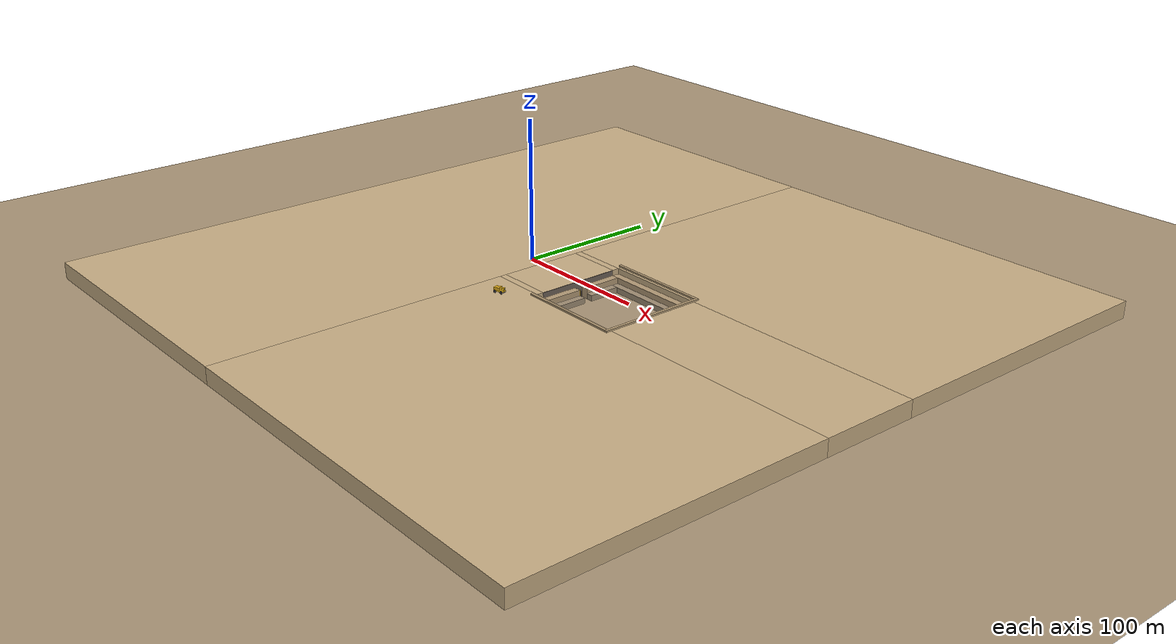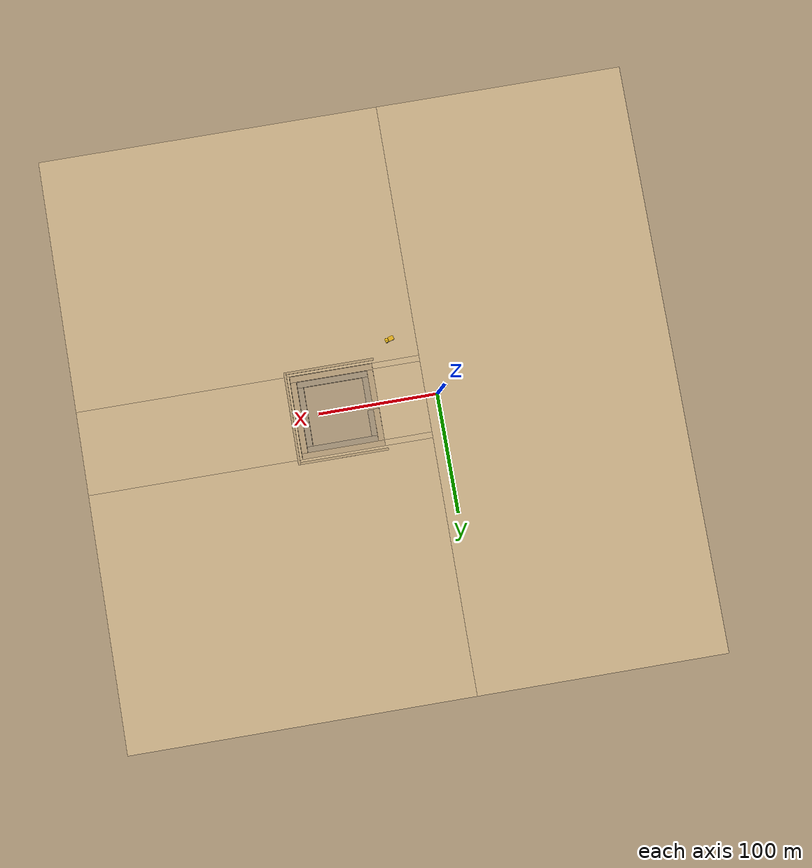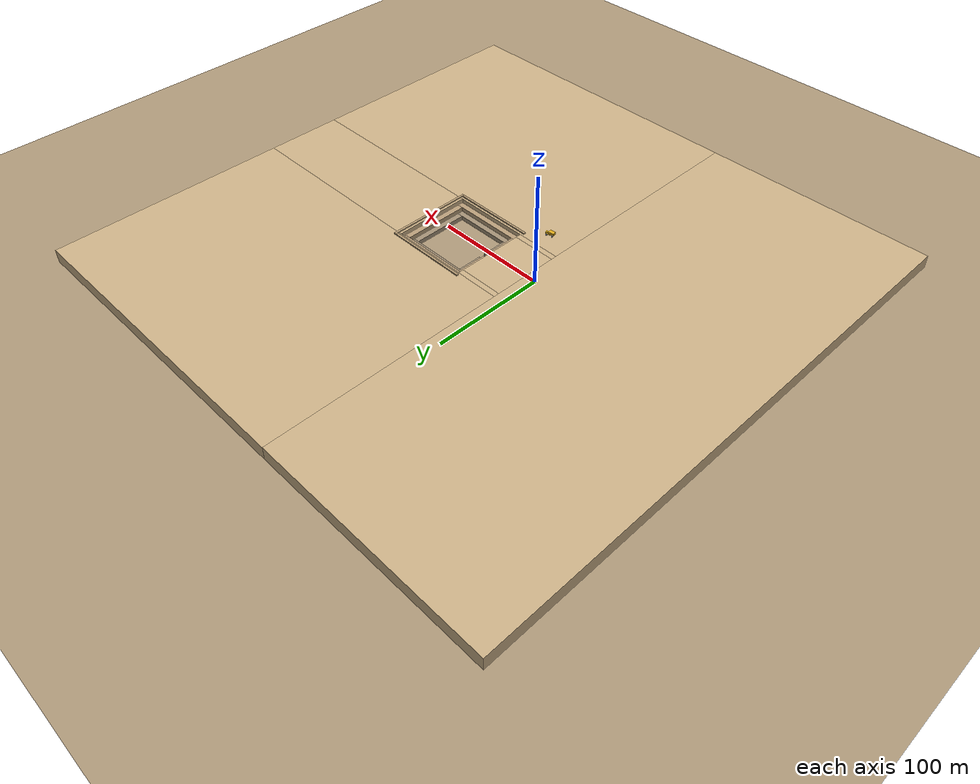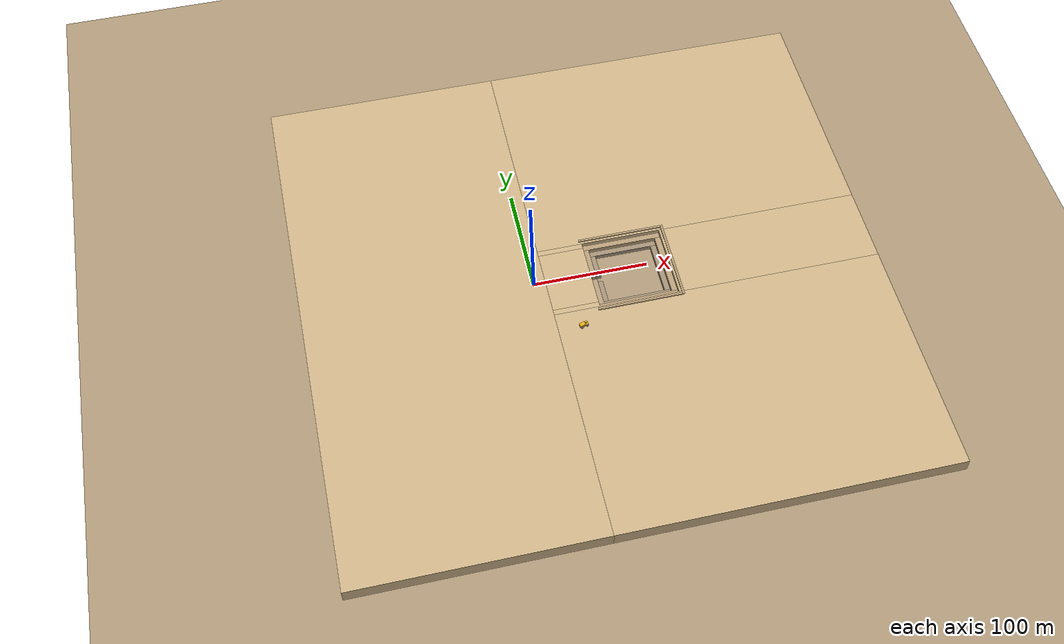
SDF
<sdf version="1.9">
 <world name="phoenix_mine">
  <model name="ground_plane">
   <static>true</static>
   <pose>0 0 -12 0 0 0</pose>
   <link name="link">
    <collision name="collision">
     <geometry><plane><normal>0 0 1</normal><size>1 1</size></plane></geometry>
    </collision>
    <visual name="visual">
     <geometry><plane><normal>0 0 1</normal><size>1500 1500</size></plane></geometry>
     <material>
      <ambient>0.66 0.58 0.46 1</ambient>
      <diffuse>0.66 0.58 0.46 1</diffuse>
      <specular>0.05 0.05 0.05 1</specular>
     </material>
    </visual>
   </link>
  </model>
  <model name="terrain_plateau">
   <static>true</static>
   <link name="link">
    <visual name="v_box_1">
     <pose>-95 0 -6 0 0 0</pose>
     <geometry><box><size>210 500 12</size></box></geometry>
     <material>
      <ambient>0.780 0.680 0.520 1</ambient>
      <diffuse>0.780 0.680 0.520 1</diffuse>
      <specular>0.08 0.08 0.08 1</specular>
     </material>
    </visual>
    <collision name="c_box_1">
     <pose>-95 0 -6 0 0 0</pose>
     <geometry><box><size>210 500 12</size></box></geometry>
    </collision>
    <visual name="v_box_2">
     <pose>155 -142.5 -6 0 0 0</pose>
     <geometry><box><size>290 215 12</size></box></geometry>
     <material>
      <ambient>0.780 0.680 0.520 1</ambient>
      <diffuse>0.780 0.680 0.520 1</diffuse>
      <specular>0.08 0.08 0.08 1</specular>
     </material>
    </visual>
    <collision name="c_box_2">
     <pose>155 -142.5 -6 0 0 0</pose>
     <geometry><box><size>290 215 12</size></box></geometry>
    </collision>
    <visual name="v_box_3">
     <pose>155 142.5 -6 0 0 0</pose>
     <geometry><box><size>290 215 12</size></box></geometry>
     <material>
      <ambient>0.780 0.680 0.520 1</ambient>
      <diffuse>0.780 0.680 0.520 1</diffuse>
      <specular>0.08 0.08 0.08 1</specular>
     </material>
    </visual>
    <collision name="c_box_3">
     <pose>155 142.5 -6 0 0 0</pose>
     <geometry><box><size>290 215 12</size></box></geometry>
    </collision>
    <visual name="v_box_4">
     <pose>210 0 -6 0 0 0</pose>
     <geometry><box><size>180 70 12</size></box></geometry>
     <material>
      <ambient>0.780 0.680 0.520 1</ambient>
      <diffuse>0.780 0.680 0.520 1</diffuse>
      <specular>0.08 0.08 0.08 1</specular>
     </material>
    </visual>
    <collision name="c_box_4">
     <pose>210 0 -6 0 0 0</pose>
     <geometry><box><size>180 70 12</size></box></geometry>
    </collision>
    <visual name="v_box_5">
     <pose>30 -32.5 -6 0 0 0</pose>
     <geometry><box><size>40 5 12</size></box></geometry>
     <material>
      <ambient>0.780 0.680 0.520 1</ambient>
      <diffuse>0.780 0.680 0.520 1</diffuse>
      <specular>0.08 0.08 0.08 1</specular>
     </material>
    </visual>
    <collision name="c_box_5">
     <pose>30 -32.5 -6 0 0 0</pose>
     <geometry><box><size>40 5 12</size></box></geometry>
    </collision>
    <visual name="v_box_6">
     <pose>30 32.5 -6 0 0 0</pose>
     <geometry><box><size>40 5 12</size></box></geometry>
     <material>
      <ambient>0.780 0.680 0.520 1</ambient>
      <diffuse>0.780 0.680 0.520 1</diffuse>
      <specular>0.08 0.08 0.08 1</specular>
     </material>
    </visual>
    <collision name="c_box_6">
     <pose>30 32.5 -6 0 0 0</pose>
     <geometry><box><size>40 5 12</size></box></geometry>
    </collision>
   </link>
  </model>
  <model name="open_pit_benches">
   <static>true</static>
   <link name="link">
    <visual name="v_box_1">
     <pose>85 32.5 -8 0 0 0</pose>
     <geometry><box><size>70 5 8</size></box></geometry>
     <material>
      <ambient>0.700 0.600 0.460 1</ambient>
      <diffuse>0.700 0.600 0.460 1</diffuse>
      <specular>0.08 0.08 0.08 1</specular>
     </material>
    </visual>
    <collision name="c_box_1">
     <pose>85 32.5 -8 0 0 0</pose>
     <geometry><box><size>70 5 8</size></box></geometry>
    </collision>
    <visual name="v_box_2">
     <pose>85 -32.5 -8 0 0 0</pose>
     <geometry><box><size>70 5 8</size></box></geometry>
     <material>
      <ambient>0.700 0.600 0.460 1</ambient>
      <diffuse>0.700 0.600 0.460 1</diffuse>
      <specular>0.08 0.08 0.08 1</specular>
     </material>
    </visual>
    <collision name="c_box_2">
     <pose>85 -32.5 -8 0 0 0</pose>
     <geometry><box><size>70 5 8</size></box></geometry>
    </collision>
    <visual name="v_box_3">
     <pose>117.5 0 -8 0 0 0</pose>
     <geometry><box><size>5 60 8</size></box></geometry>
     <material>
      <ambient>0.700 0.600 0.460 1</ambient>
      <diffuse>0.700 0.600 0.460 1</diffuse>
      <specular>0.08 0.08 0.08 1</specular>
     </material>
    </visual>
    <collision name="c_box_3">
     <pose>117.5 0 -8 0 0 0</pose>
     <geometry><box><size>5 60 8</size></box></geometry>
    </collision>
    <visual name="v_box_4">
     <pose>52.5 -16.5 -8 0 0 0</pose>
     <geometry><box><size>5 27 8</size></box></geometry>
     <material>
      <ambient>0.700 0.600 0.460 1</ambient>
      <diffuse>0.700 0.600 0.460 1</diffuse>
      <specular>0.08 0.08 0.08 1</specular>
     </material>
    </visual>
    <collision name="c_box_4">
     <pose>52.5 -16.5 -8 0 0 0</pose>
     <geometry><box><size>5 27 8</size></box></geometry>
    </collision>
    <visual name="v_box_5">
     <pose>52.5 16.5 -8 0 0 0</pose>
     <geometry><box><size>5 27 8</size></box></geometry>
     <material>
      <ambient>0.700 0.600 0.460 1</ambient>
      <diffuse>0.700 0.600 0.460 1</diffuse>
      <specular>0.08 0.08 0.08 1</specular>
     </material>
    </visual>
    <collision name="c_box_5">
     <pose>52.5 16.5 -8 0 0 0</pose>
     <geometry><box><size>5 27 8</size></box></geometry>
    </collision>
    <visual name="v_box_6">
     <pose>85 27.5 -10 0 0 0</pose>
     <geometry><box><size>60 5 4</size></box></geometry>
     <material>
      <ambient>0.620 0.550 0.450 1</ambient>
      <diffuse>0.620 0.550 0.450 1</diffuse>
      <specular>0.08 0.08 0.08 1</specular>
     </material>
    </visual>
    <collision name="c_box_6">
     <pose>85 27.5 -10 0 0 0</pose>
     <geometry><box><size>60 5 4</size></box></geometry>
    </collision>
    <visual name="v_box_7">
     <pose>85 -27.5 -10 0 0 0</pose>
     <geometry><box><size>60 5 4</size></box></geometry>
     <material>
      <ambient>0.620 0.550 0.450 1</ambient>
      <diffuse>0.620 0.550 0.450 1</diffuse>
      <specular>0.08 0.08 0.08 1</specular>
     </material>
    </visual>
    <collision name="c_box_7">
     <pose>85 -27.5 -10 0 0 0</pose>
     <geometry><box><size>60 5 4</size></box></geometry>
    </collision>
    <visual name="v_box_8">
     <pose>112.5 0 -10 0 0 0</pose>
     <geometry><box><size>5 50 4</size></box></geometry>
     <material>
      <ambient>0.620 0.550 0.450 1</ambient>
      <diffuse>0.620 0.550 0.450 1</diffuse>
      <specular>0.08 0.08 0.08 1</specular>
     </material>
    </visual>
    <collision name="c_box_8">
     <pose>112.5 0 -10 0 0 0</pose>
     <geometry><box><size>5 50 4</size></box></geometry>
    </collision>
    <visual name="v_box_9">
     <pose>57.5 -14 -10 0 0 0</pose>
     <geometry><box><size>5 22 4</size></box></geometry>
     <material>
      <ambient>0.620 0.550 0.450 1</ambient>
      <diffuse>0.620 0.550 0.450 1</diffuse>
      <specular>0.08 0.08 0.08 1</specular>
     </material>
    </visual>
    <collision name="c_box_9">
     <pose>57.5 -14 -10 0 0 0</pose>
     <geometry><box><size>5 22 4</size></box></geometry>
    </collision>
    <visual name="v_box_10">
     <pose>57.5 14 -10 0 0 0</pose>
     <geometry><box><size>5 22 4</size></box></geometry>
     <material>
      <ambient>0.620 0.550 0.450 1</ambient>
      <diffuse>0.620 0.550 0.450 1</diffuse>
      <specular>0.08 0.08 0.08 1</specular>
     </material>
    </visual>
    <collision name="c_box_10">
     <pose>57.5 14 -10 0 0 0</pose>
     <geometry><box><size>5 22 4</size></box></geometry>
    </collision>
    <visual name="v_box_11">
     <pose>85 38 0.6 0 0 0</pose>
     <geometry><box><size>74 2 1.2</size></box></geometry>
     <material>
      <ambient>0.700 0.600 0.450 1</ambient>
      <diffuse>0.700 0.600 0.450 1</diffuse>
      <specular>0.08 0.08 0.08 1</specular>
     </material>
    </visual>
    <collision name="c_box_11">
     <pose>85 38 0.6 0 0 0</pose>
     <geometry><box><size>74 2 1.2</size></box></geometry>
    </collision>
    <visual name="v_box_12">
     <pose>85 -38 0.6 0 0 0</pose>
     <geometry><box><size>74 2 1.2</size></box></geometry>
     <material>
      <ambient>0.700 0.600 0.450 1</ambient>
      <diffuse>0.700 0.600 0.450 1</diffuse>
      <specular>0.08 0.08 0.08 1</specular>
     </material>
    </visual>
    <collision name="c_box_12">
     <pose>85 -38 0.6 0 0 0</pose>
     <geometry><box><size>74 2 1.2</size></box></geometry>
    </collision>
    <visual name="v_box_13">
     <pose>123 0 0.6 0 0 0</pose>
     <geometry><box><size>2 78 1.2</size></box></geometry>
     <material>
      <ambient>0.700 0.600 0.450 1</ambient>
      <diffuse>0.700 0.600 0.450 1</diffuse>
      <specular>0.08 0.08 0.08 1</specular>
     </material>
    </visual>
    <collision name="c_box_13">
     <pose>123 0 0.6 0 0 0</pose>
     <geometry><box><size>2 78 1.2</size></box></geometry>
    </collision>
   </link>
  </model>
  <model name="underground_panel">
   <static>true</static>
   <link name="link">
    <visual name="v_box_1">
     <pose>30 0 -4.15 0 0 0</pose>
     <geometry><box><size>40 60 7.7</size></box></geometry>
     <material>
      <ambient>0.420 0.380 0.340 1</ambient>
      <diffuse>0.420 0.380 0.340 1</diffuse>
      <specular>0.08 0.08 0.08 1</specular>
     </material>
    </visual>
    <collision name="c_box_1">
     <pose>30 0 -4.15 0 0 0</pose>
     <geometry><box><size>40 60 7.7</size></box></geometry>
    </collision>
    <visual name="v_box_2">
     <pose>30 0 -0.15 0 0 0</pose>
     <geometry><box><size>40 60 0.3</size></box></geometry>
     <material>
      <ambient>0.780 0.680 0.520 1</ambient>
      <diffuse>0.780 0.680 0.520 1</diffuse>
      <specular>0.08 0.08 0.08 1</specular>
     </material>
    </visual>
    <collision name="c_box_2">
     <pose>30 0 -0.15 0 0 0</pose>
     <geometry><box><size>40 60 0.3</size></box></geometry>
    </collision>
    <visual name="v_box_3">
     <pose>12 0 -10 0 0 0</pose>
     <geometry><box><size>4 60 4</size></box></geometry>
     <material>
      <ambient>0.420 0.380 0.340 1</ambient>
      <diffuse>0.420 0.380 0.340 1</diffuse>
      <specular>0.08 0.08 0.08 1</specular>
     </material>
    </visual>
    <collision name="c_box_3">
     <pose>12 0 -10 0 0 0</pose>
     <geometry><box><size>4 60 4</size></box></geometry>
    </collision>
    <visual name="v_box_4">
     <pose>31 26 -10 0 0 0</pose>
     <geometry><box><size>34 8 4</size></box></geometry>
     <material>
      <ambient>0.420 0.380 0.340 1</ambient>
      <diffuse>0.420 0.380 0.340 1</diffuse>
      <specular>0.08 0.08 0.08 1</specular>
     </material>
    </visual>
    <collision name="c_box_4">
     <pose>31 26 -10 0 0 0</pose>
     <geometry><box><size>34 8 4</size></box></geometry>
    </collision>
    <visual name="v_box_5">
     <pose>31 -26 -10 0 0 0</pose>
     <geometry><box><size>34 8 4</size></box></geometry>
     <material>
      <ambient>0.420 0.380 0.340 1</ambient>
      <diffuse>0.420 0.380 0.340 1</diffuse>
      <specular>0.08 0.08 0.08 1</specular>
     </material>
    </visual>
    <collision name="c_box_5">
     <pose>31 -26 -10 0 0 0</pose>
     <geometry><box><size>34 8 4</size></box></geometry>
    </collision>
    <visual name="v_box_6">
     <pose>49 -16 -10 0 0 0</pose>
     <geometry><box><size>2 28 4</size></box></geometry>
     <material>
      <ambient>0.420 0.380 0.340 1</ambient>
      <diffuse>0.420 0.380 0.340 1</diffuse>
      <specular>0.08 0.08 0.08 1</specular>
     </material>
    </visual>
    <collision name="c_box_6">
     <pose>49 -16 -10 0 0 0</pose>
     <geometry><box><size>2 28 4</size></box></geometry>
    </collision>
    <visual name="v_box_7">
     <pose>49 16 -10 0 0 0</pose>
     <geometry><box><size>2 28 4</size></box></geometry>
     <material>
      <ambient>0.420 0.380 0.340 1</ambient>
      <diffuse>0.420 0.380 0.340 1</diffuse>
      <specular>0.08 0.08 0.08 1</specular>
     </material>
    </visual>
    <collision name="c_box_7">
     <pose>49 16 -10 0 0 0</pose>
     <geometry><box><size>2 28 4</size></box></geometry>
    </collision>
    <visual name="v_box_8">
     <pose>21 -15 -10 0 0 0</pose>
     <geometry><box><size>6 6 4</size></box></geometry>
     <material>
      <ambient>0.480 0.440 0.380 1</ambient>
      <diffuse>0.480 0.440 0.380 1</diffuse>
      <specular>0.08 0.08 0.08 1</specular>
     </material>
    </visual>
    <collision name="c_box_8">
     <pose>21 -15 -10 0 0 0</pose>
     <geometry><box><size>6 6 4</size></box></geometry>
    </collision>
    <visual name="v_box_9">
     <pose>21 -5 -10 0 0 0</pose>
     <geometry><box><size>6 6 4</size></box></geometry>
     <material>
      <ambient>0.480 0.440 0.380 1</ambient>
      <diffuse>0.480 0.440 0.380 1</diffuse>
      <specular>0.08 0.08 0.08 1</specular>
     </material>
    </visual>
    <collision name="c_box_9">
     <pose>21 -5 -10 0 0 0</pose>
     <geometry><box><size>6 6 4</size></box></geometry>
    </collision>
    <visual name="v_box_10">
     <pose>21 5 -10 0 0 0</pose>
     <geometry><box><size>6 6 4</size></box></geometry>
     <material>
      <ambient>0.480 0.440 0.380 1</ambient>
      <diffuse>0.480 0.440 0.380 1</diffuse>
      <specular>0.08 0.08 0.08 1</specular>
     </material>
    </visual>
    <collision name="c_box_10">
     <pose>21 5 -10 0 0 0</pose>
     <geometry><box><size>6 6 4</size></box></geometry>
    </collision>
    <visual name="v_box_11">
     <pose>21 15 -10 0 0 0</pose>
     <geometry><box><size>6 6 4</size></box></geometry>
     <material>
      <ambient>0.480 0.440 0.380 1</ambient>
      <diffuse>0.480 0.440 0.380 1</diffuse>
      <specular>0.08 0.08 0.08 1</specular>
     </material>
    </visual>
    <collision name="c_box_11">
     <pose>21 15 -10 0 0 0</pose>
     <geometry><box><size>6 6 4</size></box></geometry>
    </collision>
    <visual name="v_box_12">
     <pose>31 -15 -10 0 0 0</pose>
     <geometry><box><size>6 6 4</size></box></geometry>
     <material>
      <ambient>0.480 0.440 0.380 1</ambient>
      <diffuse>0.480 0.440 0.380 1</diffuse>
      <specular>0.08 0.08 0.08 1</specular>
     </material>
    </visual>
    <collision name="c_box_12">
     <pose>31 -15 -10 0 0 0</pose>
     <geometry><box><size>6 6 4</size></box></geometry>
    </collision>
    <visual name="v_box_13">
     <pose>31 -5 -10 0 0 0</pose>
     <geometry><box><size>6 6 4</size></box></geometry>
     <material>
      <ambient>0.480 0.440 0.380 1</ambient>
      <diffuse>0.480 0.440 0.380 1</diffuse>
      <specular>0.08 0.08 0.08 1</specular>
     </material>
    </visual>
    <collision name="c_box_13">
     <pose>31 -5 -10 0 0 0</pose>
     <geometry><box><size>6 6 4</size></box></geometry>
    </collision>
    <visual name="v_box_14">
     <pose>31 5 -10 0 0 0</pose>
     <geometry><box><size>6 6 4</size></box></geometry>
     <material>
      <ambient>0.480 0.440 0.380 1</ambient>
      <diffuse>0.480 0.440 0.380 1</diffuse>
      <specular>0.08 0.08 0.08 1</specular>
     </material>
    </visual>
    <collision name="c_box_14">
     <pose>31 5 -10 0 0 0</pose>
     <geometry><box><size>6 6 4</size></box></geometry>
    </collision>
    <visual name="v_box_15">
     <pose>31 15 -10 0 0 0</pose>
     <geometry><box><size>6 6 4</size></box></geometry>
     <material>
      <ambient>0.480 0.440 0.380 1</ambient>
      <diffuse>0.480 0.440 0.380 1</diffuse>
      <specular>0.08 0.08 0.08 1</specular>
     </material>
    </visual>
    <collision name="c_box_15">
     <pose>31 15 -10 0 0 0</pose>
     <geometry><box><size>6 6 4</size></box></geometry>
    </collision>
    <visual name="v_box_16">
     <pose>41 -15 -10 0 0 0</pose>
     <geometry><box><size>6 6 4</size></box></geometry>
     <material>
      <ambient>0.480 0.440 0.380 1</ambient>
      <diffuse>0.480 0.440 0.380 1</diffuse>
      <specular>0.08 0.08 0.08 1</specular>
     </material>
    </visual>
    <collision name="c_box_16">
     <pose>41 -15 -10 0 0 0</pose>
     <geometry><box><size>6 6 4</size></box></geometry>
    </collision>
    <visual name="v_box_17">
     <pose>41 -5 -10 0 0 0</pose>
     <geometry><box><size>6 6 4</size></box></geometry>
     <material>
      <ambient>0.480 0.440 0.380 1</ambient>
      <diffuse>0.480 0.440 0.380 1</diffuse>
      <specular>0.08 0.08 0.08 1</specular>
     </material>
    </visual>
    <collision name="c_box_17">
     <pose>41 -5 -10 0 0 0</pose>
     <geometry><box><size>6 6 4</size></box></geometry>
    </collision>
    <visual name="v_box_18">
     <pose>41 5 -10 0 0 0</pose>
     <geometry><box><size>6 6 4</size></box></geometry>
     <material>
      <ambient>0.480 0.440 0.380 1</ambient>
      <diffuse>0.480 0.440 0.380 1</diffuse>
      <specular>0.08 0.08 0.08 1</specular>
     </material>
    </visual>
    <collision name="c_box_18">
     <pose>41 5 -10 0 0 0</pose>
     <geometry><box><size>6 6 4</size></box></geometry>
    </collision>
    <visual name="v_box_19">
     <pose>41 15 -10 0 0 0</pose>
     <geometry><box><size>6 6 4</size></box></geometry>
     <material>
      <ambient>0.480 0.440 0.380 1</ambient>
      <diffuse>0.480 0.440 0.380 1</diffuse>
      <specular>0.08 0.08 0.08 1</specular>
     </material>
    </visual>
    <collision name="c_box_19">
     <pose>41 15 -10 0 0 0</pose>
     <geometry><box><size>6 6 4</size></box></geometry>
    </collision>
   </link>
  </model>
  <model name="underground_infrastructure">
   <static>true</static>
   <link name="link">
    <visual name="v_cyl_1">
     <pose>49.4 -1.8 -10.07 0 0 0</pose>
     <geometry><cylinder><radius>0.12</radius><length>3.85</length></cylinder></geometry>
     <material>
      <ambient>0.950 0.750 0.100 1</ambient>
      <diffuse>0.950 0.750 0.100 1</diffuse>
      <specular>0.08 0.08 0.08 1</specular>
     </material>
    </visual>
    <collision name="c_cyl_1">
     <pose>49.4 -1.8 -10.07 0 0 0</pose>
     <geometry><cylinder><radius>0.12</radius><length>3.85</length></cylinder></geometry>
    </collision>
    <visual name="v_cyl_2">
     <pose>49.4 1.8 -10.07 0 0 0</pose>
     <geometry><cylinder><radius>0.12</radius><length>3.85</length></cylinder></geometry>
     <material>
      <ambient>0.950 0.750 0.100 1</ambient>
      <diffuse>0.950 0.750 0.100 1</diffuse>
      <specular>0.08 0.08 0.08 1</specular>
     </material>
    </visual>
    <collision name="c_cyl_2">
     <pose>49.4 1.8 -10.07 0 0 0</pose>
     <geometry><cylinder><radius>0.12</radius><length>3.85</length></cylinder></geometry>
    </collision>
    <visual name="v_box_3">
     <pose>49.4 0 -8.15 0 0 0</pose>
     <geometry><box><size>0.25 4 0.25</size></box></geometry>
     <material>
      <ambient>0.950 0.750 0.100 1</ambient>
      <diffuse>0.950 0.750 0.100 1</diffuse>
      <specular>0.08 0.08 0.08 1</specular>
     </material>
    </visual>
    <collision name="c_box_3">
     <pose>49.4 0 -8.15 0 0 0</pose>
     <geometry><box><size>0.25 4 0.25</size></box></geometry>
    </collision>
    <visual name="v_cyl_4">
     <pose>47 -1.8 -10.07 0 0 0</pose>
     <geometry><cylinder><radius>0.12</radius><length>3.85</length></cylinder></geometry>
     <material>
      <ambient>0.950 0.750 0.100 1</ambient>
      <diffuse>0.950 0.750 0.100 1</diffuse>
      <specular>0.08 0.08 0.08 1</specular>
     </material>
    </visual>
    <collision name="c_cyl_4">
     <pose>47 -1.8 -10.07 0 0 0</pose>
     <geometry><cylinder><radius>0.12</radius><length>3.85</length></cylinder></geometry>
    </collision>
    <visual name="v_cyl_5">
     <pose>47 1.8 -10.07 0 0 0</pose>
     <geometry><cylinder><radius>0.12</radius><length>3.85</length></cylinder></geometry>
     <material>
      <ambient>0.950 0.750 0.100 1</ambient>
      <diffuse>0.950 0.750 0.100 1</diffuse>
      <specular>0.08 0.08 0.08 1</specular>
     </material>
    </visual>
    <collision name="c_cyl_5">
     <pose>47 1.8 -10.07 0 0 0</pose>
     <geometry><cylinder><radius>0.12</radius><length>3.85</length></cylinder></geometry>
    </collision>
    <visual name="v_box_6">
     <pose>47 0 -8.15 0 0 0</pose>
     <geometry><box><size>0.25 4 0.25</size></box></geometry>
     <material>
      <ambient>0.950 0.750 0.100 1</ambient>
      <diffuse>0.950 0.750 0.100 1</diffuse>
      <specular>0.08 0.08 0.08 1</specular>
     </material>
    </visual>
    <collision name="c_box_6">
     <pose>47 0 -8.15 0 0 0</pose>
     <geometry><box><size>0.25 4 0.25</size></box></geometry>
    </collision>
    <visual name="v_cyl_7">
     <pose>44.6 -1.8 -10.07 0 0 0</pose>
     <geometry><cylinder><radius>0.12</radius><length>3.85</length></cylinder></geometry>
     <material>
      <ambient>0.950 0.750 0.100 1</ambient>
      <diffuse>0.950 0.750 0.100 1</diffuse>
      <specular>0.08 0.08 0.08 1</specular>
     </material>
    </visual>
    <collision name="c_cyl_7">
     <pose>44.6 -1.8 -10.07 0 0 0</pose>
     <geometry><cylinder><radius>0.12</radius><length>3.85</length></cylinder></geometry>
    </collision>
    <visual name="v_cyl_8">
     <pose>44.6 1.8 -10.07 0 0 0</pose>
     <geometry><cylinder><radius>0.12</radius><length>3.85</length></cylinder></geometry>
     <material>
      <ambient>0.950 0.750 0.100 1</ambient>
      <diffuse>0.950 0.750 0.100 1</diffuse>
      <specular>0.08 0.08 0.08 1</specular>
     </material>
    </visual>
    <collision name="c_cyl_8">
     <pose>44.6 1.8 -10.07 0 0 0</pose>
     <geometry><cylinder><radius>0.12</radius><length>3.85</length></cylinder></geometry>
    </collision>
    <visual name="v_box_9">
     <pose>44.6 0 -8.15 0 0 0</pose>
     <geometry><box><size>0.25 4 0.25</size></box></geometry>
     <material>
      <ambient>0.950 0.750 0.100 1</ambient>
      <diffuse>0.950 0.750 0.100 1</diffuse>
      <specular>0.08 0.08 0.08 1</specular>
     </material>
    </visual>
    <collision name="c_box_9">
     <pose>44.6 0 -8.15 0 0 0</pose>
     <geometry><box><size>0.25 4 0.25</size></box></geometry>
    </collision>
    <visual name="v_box_10">
     <pose>50.05 0 -7.4 0 0 0</pose>
     <geometry><box><size>0.06 3 0.7</size></box></geometry>
     <material>
      <ambient>0.950 0.750 0.100 1</ambient>
      <diffuse>0.950 0.750 0.100 1</diffuse>
      <specular>0.08 0.08 0.08 1</specular>
     </material>
    </visual>
    <visual name="v_cyl_11">
     <pose>31 1.3 -8.6 0 1.571 0</pose>
     <geometry><cylinder><radius>0.35</radius><length>34</length></cylinder></geometry>
     <material>
      <ambient>0.850 0.850 0.800 1</ambient>
      <diffuse>0.850 0.850 0.800 1</diffuse>
      <specular>0.08 0.08 0.08 1</specular>
     </material>
    </visual>
    <collision name="c_cyl_11">
     <pose>31 1.3 -8.6 0 1.571 0</pose>
     <geometry><cylinder><radius>0.35</radius><length>34</length></cylinder></geometry>
    </collision>
    <visual name="v_cyl_12">
     <pose>31 -1.85 -9.6 0 1.571 0</pose>
     <geometry><cylinder><radius>0.03</radius><length>34</length></cylinder></geometry>
     <material>
      <ambient>0.180 0.180 0.200 1</ambient>
      <diffuse>0.180 0.180 0.200 1</diffuse>
      <specular>0.08 0.08 0.08 1</specular>
     </material>
    </visual>
    <collision name="c_cyl_12">
     <pose>31 -1.85 -9.6 0 1.571 0</pose>
     <geometry><cylinder><radius>0.03</radius><length>34</length></cylinder></geometry>
    </collision>
    <visual name="v_cyl_13">
     <pose>40.5 0 -9.3 1.571 0 0</pose>
     <geometry><cylinder><radius>0.03</radius><length>4.0</length></cylinder></geometry>
     <material>
      <ambient>0.180 0.180 0.200 1</ambient>
      <diffuse>0.180 0.180 0.200 1</diffuse>
      <specular>0.08 0.08 0.08 1</specular>
     </material>
    </visual>
    <collision name="c_cyl_13">
     <pose>40.5 0 -9.3 1.571 0 0</pose>
     <geometry><cylinder><radius>0.03</radius><length>4.0</length></cylinder></geometry>
    </collision>
    <visual name="v_box_14">
     <pose>45.5 -1 -8.06 0 0 0</pose>
     <geometry><box><size>0.5 0.25 0.08</size></box></geometry>
     <material>
      <ambient>0.920 0.920 0.900 1</ambient>
      <diffuse>0.920 0.920 0.900 1</diffuse>
      <specular>0.08 0.08 0.08 1</specular>
      <emissive>1.000 0.950 0.800 1</emissive>
     </material>
    </visual>
    <visual name="v_box_15">
     <pose>35.5 -1 -8.06 0 0 0</pose>
     <geometry><box><size>0.5 0.25 0.08</size></box></geometry>
     <material>
      <ambient>0.920 0.920 0.900 1</ambient>
      <diffuse>0.920 0.920 0.900 1</diffuse>
      <specular>0.08 0.08 0.08 1</specular>
      <emissive>1.000 0.950 0.800 1</emissive>
     </material>
    </visual>
    <visual name="v_box_16">
     <pose>25 13.5 -11.5 0.3 0.1 0.5</pose>
     <geometry><box><size>1.6 1.2 1</size></box></geometry>
     <material>
      <ambient>0.400 0.360 0.320 1</ambient>
      <diffuse>0.400 0.360 0.320 1</diffuse>
      <specular>0.08 0.08 0.08 1</specular>
     </material>
    </visual>
    <collision name="c_box_16">
     <pose>25 13.5 -11.5 0.3 0.1 0.5</pose>
     <geometry><box><size>1.6 1.2 1</size></box></geometry>
    </collision>
    <visual name="v_box_17">
     <pose>26.6 14.2 -11.55 0 0.4 1.2</pose>
     <geometry><box><size>1.2 1.4 0.9</size></box></geometry>
     <material>
      <ambient>0.400 0.360 0.320 1</ambient>
      <diffuse>0.400 0.360 0.320 1</diffuse>
      <specular>0.08 0.08 0.08 1</specular>
     </material>
    </visual>
    <collision name="c_box_17">
     <pose>26.6 14.2 -11.55 0 0.4 1.2</pose>
     <geometry><box><size>1.2 1.4 0.9</size></box></geometry>
    </collision>
    <visual name="v_box_18">
     <pose>25.6 15.6 -11.4 0.2 0 2</pose>
     <geometry><box><size>1.8 1 1.2</size></box></geometry>
     <material>
      <ambient>0.400 0.360 0.320 1</ambient>
      <diffuse>0.400 0.360 0.320 1</diffuse>
      <specular>0.08 0.08 0.08 1</specular>
     </material>
    </visual>
    <collision name="c_box_18">
     <pose>25.6 15.6 -11.4 0.2 0 2</pose>
     <geometry><box><size>1.8 1 1.2</size></box></geometry>
    </collision>
    <visual name="v_box_19">
     <pose>27.2 16.4 -11.6 0.5 0.3 0.3</pose>
     <geometry><box><size>1 1 0.8</size></box></geometry>
     <material>
      <ambient>0.400 0.360 0.320 1</ambient>
      <diffuse>0.400 0.360 0.320 1</diffuse>
      <specular>0.08 0.08 0.08 1</specular>
     </material>
    </visual>
    <collision name="c_box_19">
     <pose>27.2 16.4 -11.6 0.5 0.3 0.3</pose>
     <geometry><box><size>1 1 0.8</size></box></geometry>
    </collision>
    <visual name="v_box_20">
     <pose>24.8 16.9 -11.45 0.1 0.2 0.9</pose>
     <geometry><box><size>1.4 1.6 1.1</size></box></geometry>
     <material>
      <ambient>0.400 0.360 0.320 1</ambient>
      <diffuse>0.400 0.360 0.320 1</diffuse>
      <specular>0.08 0.08 0.08 1</specular>
     </material>
    </visual>
    <collision name="c_box_20">
     <pose>24.8 16.9 -11.45 0.1 0.2 0.9</pose>
     <geometry><box><size>1.4 1.6 1.1</size></box></geometry>
    </collision>
    <visual name="v_box_21">
     <pose>26.2 12.8 -11.65 0.6 0 0</pose>
     <geometry><box><size>0.9 0.8 0.7</size></box></geometry>
     <material>
      <ambient>0.400 0.360 0.320 1</ambient>
      <diffuse>0.400 0.360 0.320 1</diffuse>
      <specular>0.08 0.08 0.08 1</specular>
     </material>
    </visual>
    <collision name="c_box_21">
     <pose>26.2 12.8 -11.65 0.6 0 0</pose>
     <geometry><box><size>0.9 0.8 0.7</size></box></geometry>
    </collision>
    <visual name="v_box_22">
     <pose>26 15 -10.2 0.35 0.25 0.2</pose>
     <geometry><box><size>4.2 3 0.4</size></box></geometry>
     <material>
      <ambient>0.400 0.360 0.320 1</ambient>
      <diffuse>0.400 0.360 0.320 1</diffuse>
      <specular>0.08 0.08 0.08 1</specular>
     </material>
    </visual>
    <collision name="c_box_22">
     <pose>26 15 -10.2 0.35 0.25 0.2</pose>
     <geometry><box><size>4.2 3 0.4</size></box></geometry>
    </collision>
    <visual name="v_box_23">
     <pose>46 -14 -10.8 0 0 0</pose>
     <geometry><box><size>2 3.6 1.4</size></box></geometry>
     <material>
      <ambient>0.950 0.750 0.100 1</ambient>
      <diffuse>0.950 0.750 0.100 1</diffuse>
      <specular>0.08 0.08 0.08 1</specular>
     </material>
    </visual>
    <collision name="c_box_23">
     <pose>46 -14 -10.8 0 0 0</pose>
     <geometry><box><size>2 3.6 1.4</size></box></geometry>
    </collision>
    <visual name="v_box_24">
     <pose>46 -11.6 -11.1 0 0 0</pose>
     <geometry><box><size>1.9 1 0.9</size></box></geometry>
     <material>
      <ambient>0.350 0.360 0.380 1</ambient>
      <diffuse>0.350 0.360 0.380 1</diffuse>
      <specular>0.08 0.08 0.08 1</specular>
     </material>
    </visual>
    <collision name="c_box_24">
     <pose>46 -11.6 -11.1 0 0 0</pose>
     <geometry><box><size>1.9 1 0.9</size></box></geometry>
    </collision>
    <visual name="v_cyl_25">
     <pose>44.95 -15.3 -11.45 0 1.571 0</pose>
     <geometry><cylinder><radius>0.55</radius><length>0.45</length></cylinder></geometry>
     <material>
      <ambient>0.180 0.180 0.200 1</ambient>
      <diffuse>0.180 0.180 0.200 1</diffuse>
      <specular>0.08 0.08 0.08 1</specular>
     </material>
    </visual>
    <collision name="c_cyl_25">
     <pose>44.95 -15.3 -11.45 0 1.571 0</pose>
     <geometry><cylinder><radius>0.55</radius><length>0.45</length></cylinder></geometry>
    </collision>
    <visual name="v_cyl_26">
     <pose>47.05 -15.3 -11.45 0 1.571 0</pose>
     <geometry><cylinder><radius>0.55</radius><length>0.45</length></cylinder></geometry>
     <material>
      <ambient>0.180 0.180 0.200 1</ambient>
      <diffuse>0.180 0.180 0.200 1</diffuse>
      <specular>0.08 0.08 0.08 1</specular>
     </material>
    </visual>
    <collision name="c_cyl_26">
     <pose>47.05 -15.3 -11.45 0 1.571 0</pose>
     <geometry><cylinder><radius>0.55</radius><length>0.45</length></cylinder></geometry>
    </collision>
    <visual name="v_cyl_27">
     <pose>44.95 -12.7 -11.45 0 1.571 0</pose>
     <geometry><cylinder><radius>0.55</radius><length>0.45</length></cylinder></geometry>
     <material>
      <ambient>0.180 0.180 0.200 1</ambient>
      <diffuse>0.180 0.180 0.200 1</diffuse>
      <specular>0.08 0.08 0.08 1</specular>
     </material>
    </visual>
    <collision name="c_cyl_27">
     <pose>44.95 -12.7 -11.45 0 1.571 0</pose>
     <geometry><cylinder><radius>0.55</radius><length>0.45</length></cylinder></geometry>
    </collision>
    <visual name="v_cyl_28">
     <pose>47.05 -12.7 -11.45 0 1.571 0</pose>
     <geometry><cylinder><radius>0.55</radius><length>0.45</length></cylinder></geometry>
     <material>
      <ambient>0.180 0.180 0.200 1</ambient>
      <diffuse>0.180 0.180 0.200 1</diffuse>
      <specular>0.08 0.08 0.08 1</specular>
     </material>
    </visual>
    <collision name="c_cyl_28">
     <pose>47.05 -12.7 -11.45 0 1.571 0</pose>
     <geometry><cylinder><radius>0.55</radius><length>0.45</length></cylinder></geometry>
    </collision>
    <visual name="v_box_29">
     <pose>21 -1.85 -10.5 0 0 0</pose>
     <geometry><box><size>0.3 0.2 0.5</size></box></geometry>
     <material>
      <ambient>0.200 0.600 0.300 1</ambient>
      <diffuse>0.200 0.600 0.300 1</diffuse>
      <specular>0.08 0.08 0.08 1</specular>
      <emissive>0.000 0.600 0.100 1</emissive>
     </material>
    </visual>
    <visual name="v_box_30">
     <pose>36 -10 -11.99 0 0 0</pose>
     <geometry><box><size>3 2 0.01</size></box></geometry>
     <material>
      <ambient>0.150 0.250 0.350 1</ambient>
      <diffuse>0.150 0.250 0.350 1</diffuse>
      <specular>0.08 0.08 0.08 1</specular>
     </material>
    </visual>
   </link>
  </model>
  <model name="haul_truck">
   <static>true</static>
   <pose>32 -52 0 0 0 0.3</pose>
   <link name="link">
    <visual name="v_box_1">
     <pose>0 0 1.6 0 0 0</pose>
     <geometry><box><size>7.5 3.4 1</size></box></geometry>
     <material>
      <ambient>0.950 0.750 0.100 1</ambient>
      <diffuse>0.950 0.750 0.100 1</diffuse>
      <specular>0.08 0.08 0.08 1</specular>
     </material>
    </visual>
    <collision name="c_box_1">
     <pose>0 0 1.6 0 0 0</pose>
     <geometry><box><size>7.5 3.4 1</size></box></geometry>
    </collision>
    <visual name="v_box_2">
     <pose>-1.2 0 3 0 -0.12 0</pose>
     <geometry><box><size>4.8 3.6 1.8</size></box></geometry>
     <material>
      <ambient>0.850 0.650 0.100 1</ambient>
      <diffuse>0.850 0.650 0.100 1</diffuse>
      <specular>0.08 0.08 0.08 1</specular>
     </material>
    </visual>
    <collision name="c_box_2">
     <pose>-1.2 0 3 0 -0.12 0</pose>
     <geometry><box><size>4.8 3.6 1.8</size></box></geometry>
    </collision>
    <visual name="v_box_3">
     <pose>2.7 0.8 2.9 0 0 0</pose>
     <geometry><box><size>1.8 1.6 1.6</size></box></geometry>
     <material>
      <ambient>0.950 0.750 0.100 1</ambient>
      <diffuse>0.950 0.750 0.100 1</diffuse>
      <specular>0.08 0.08 0.08 1</specular>
     </material>
    </visual>
    <collision name="c_box_3">
     <pose>2.7 0.8 2.9 0 0 0</pose>
     <geometry><box><size>1.8 1.6 1.6</size></box></geometry>
    </collision>
    <visual name="v_box_4">
     <pose>3.61 0.8 3.1 0 0 0</pose>
     <geometry><box><size>0.05 1.3 0.7</size></box></geometry>
     <material>
      <ambient>0.200 0.300 0.400 1</ambient>
      <diffuse>0.200 0.300 0.400 1</diffuse>
      <specular>0.08 0.08 0.08 1</specular>
     </material>
    </visual>
    <visual name="v_cyl_5">
     <pose>-2.4 -1.6 1.05 1.571 0 0</pose>
     <geometry><cylinder><radius>1.05</radius><length>0.9</length></cylinder></geometry>
     <material>
      <ambient>0.180 0.180 0.200 1</ambient>
      <diffuse>0.180 0.180 0.200 1</diffuse>
      <specular>0.08 0.08 0.08 1</specular>
     </material>
    </visual>
    <collision name="c_cyl_5">
     <pose>-2.4 -1.6 1.05 1.571 0 0</pose>
     <geometry><cylinder><radius>1.05</radius><length>0.9</length></cylinder></geometry>
    </collision>
    <visual name="v_cyl_6">
     <pose>-2.4 1.6 1.05 1.571 0 0</pose>
     <geometry><cylinder><radius>1.05</radius><length>0.9</length></cylinder></geometry>
     <material>
      <ambient>0.180 0.180 0.200 1</ambient>
      <diffuse>0.180 0.180 0.200 1</diffuse>
      <specular>0.08 0.08 0.08 1</specular>
     </material>
    </visual>
    <collision name="c_cyl_6">
     <pose>-2.4 1.6 1.05 1.571 0 0</pose>
     <geometry><cylinder><radius>1.05</radius><length>0.9</length></cylinder></geometry>
    </collision>
    <visual name="v_cyl_7">
     <pose>2.6 -1.6 1.05 1.571 0 0</pose>
     <geometry><cylinder><radius>1.05</radius><length>0.9</length></cylinder></geometry>
     <material>
      <ambient>0.180 0.180 0.200 1</ambient>
      <diffuse>0.180 0.180 0.200 1</diffuse>
      <specular>0.08 0.08 0.08 1</specular>
     </material>
    </visual>
    <collision name="c_cyl_7">
     <pose>2.6 -1.6 1.05 1.571 0 0</pose>
     <geometry><cylinder><radius>1.05</radius><length>0.9</length></cylinder></geometry>
    </collision>
    <visual name="v_cyl_8">
     <pose>2.6 1.6 1.05 1.571 0 0</pose>
     <geometry><cylinder><radius>1.05</radius><length>0.9</length></cylinder></geometry>
     <material>
      <ambient>0.180 0.180 0.200 1</ambient>
      <diffuse>0.180 0.180 0.200 1</diffuse>
      <specular>0.08 0.08 0.08 1</specular>
     </material>
    </visual>
    <collision name="c_cyl_8">
     <pose>2.6 1.6 1.05 1.571 0 0</pose>
     <geometry><cylinder><radius>1.05</radius><length>0.9</length></cylinder></geometry>
    </collision>
   </link>
  </model>
 </world>
</sdf>
